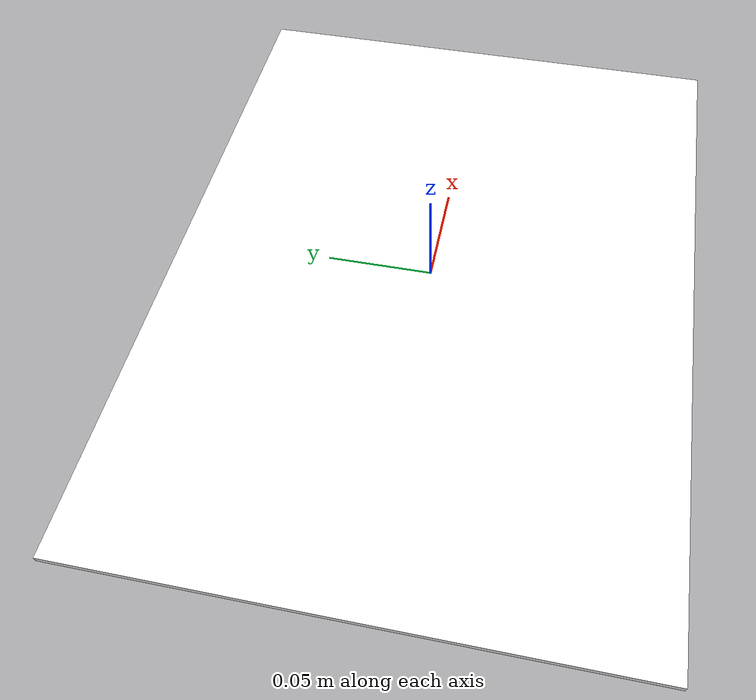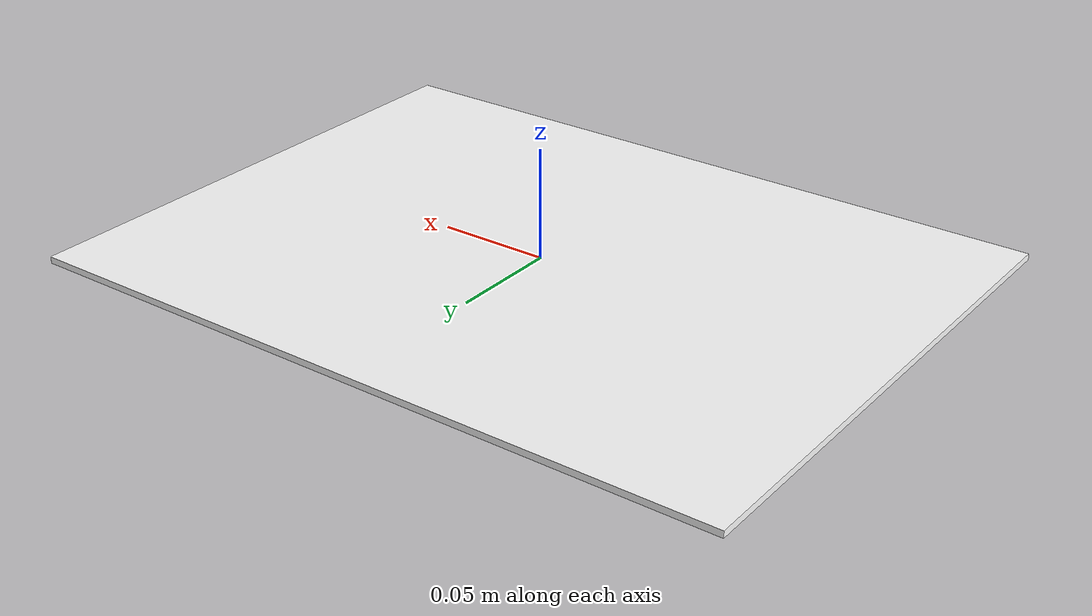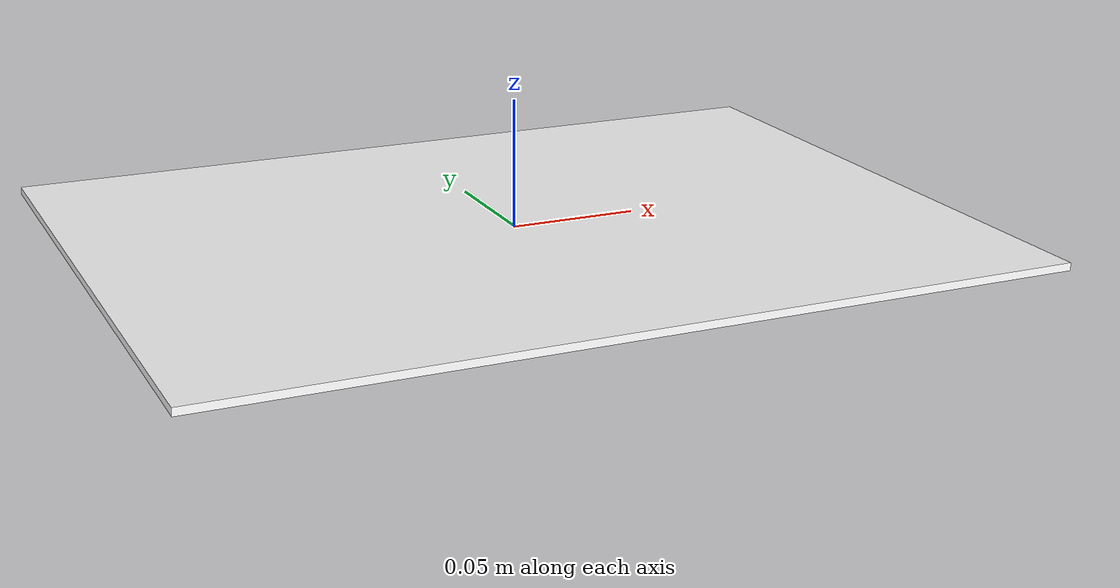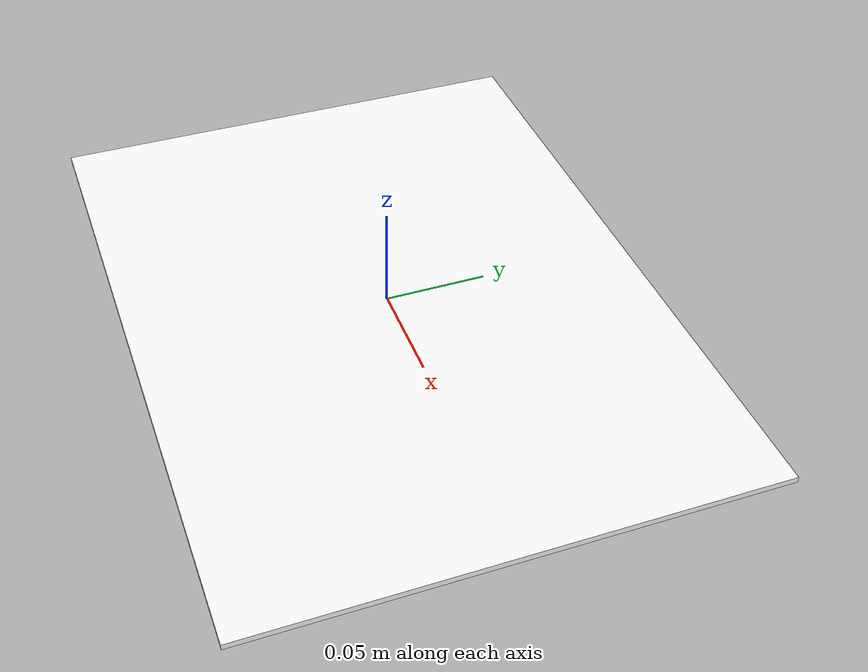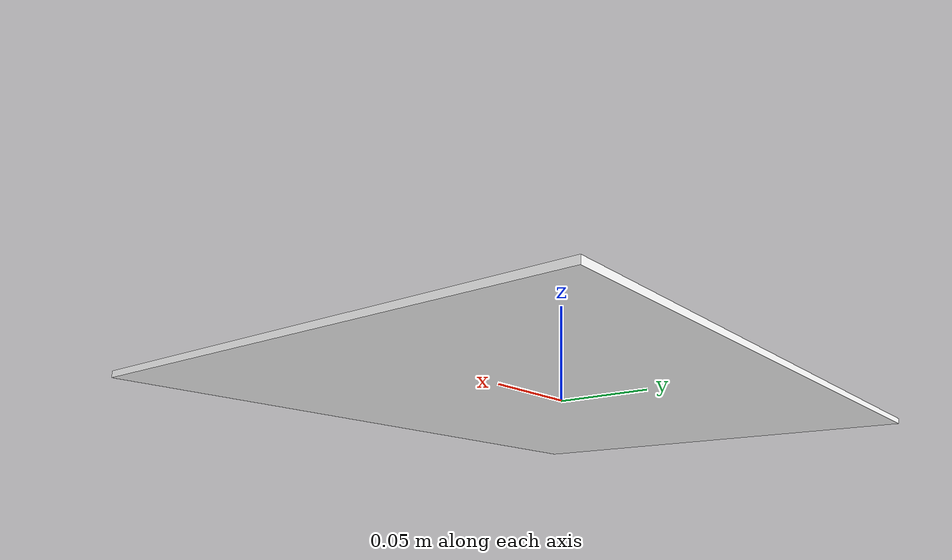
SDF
<?xml version="1.0"?>
<!-- ÜRETİLMİŞ DOSYA — scripts/make_sim_checkerboard.py. Elle düzenleme. -->
<sdf version="1.9">
  <model name="checkerboard_6x9_27p5mm">
    <static>true</static>
    <link name="link">
      <visual name="visual">
        <geometry>
          <box>
            <size>0.330000 0.247500 0.003000</size>
          </box>
        </geometry>
        <material>
          <ambient>1 1 1 1</ambient>
          <diffuse>1 1 1 1</diffuse>
          <specular>0 0 0 1</specular>
          <pbr>
            <metal>
              <metalness>0.0</metalness>
              <roughness>1.0</roughness>
              <albedo_map>materials/textures/checkerboard_6x9_27p5mm.png</albedo_map>
            </metal>
          </pbr>
        </material>
      </visual>
    </link>
  </model>
</sdf>
